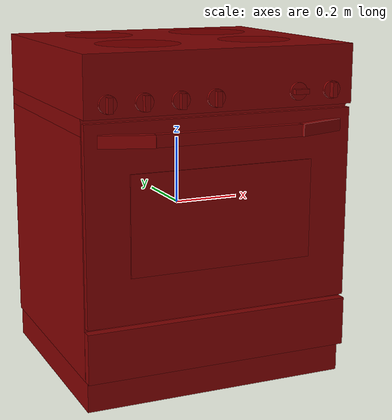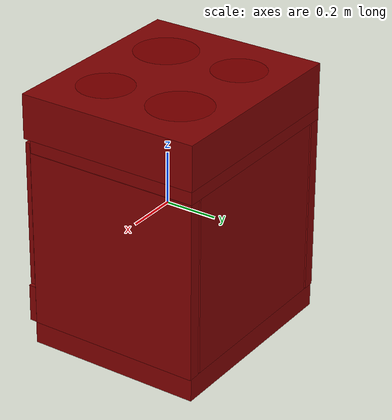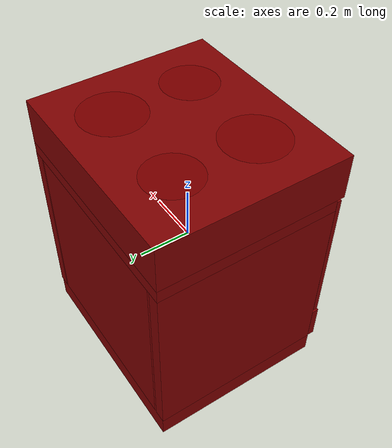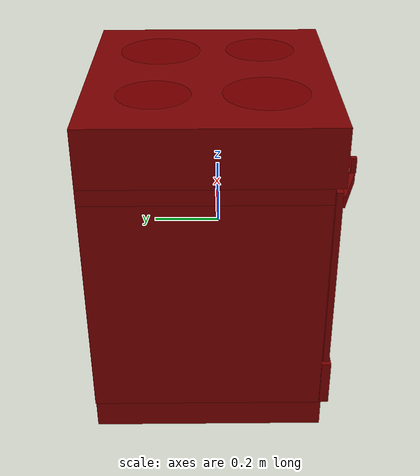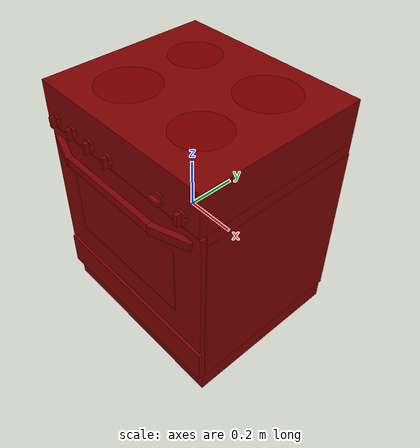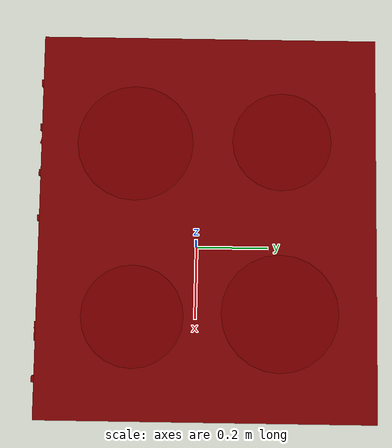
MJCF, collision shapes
<?xml version='1.0' encoding='UTF-8'?>
<mujoco model="model">
  <option timestep="0.002" gravity="0.0 0.0 -9.81"/>
  <compiler angle="radian"/>
  <asset>
    <mesh file="visuals/door.obj" name="door_vis"/>
    <mesh file="visuals/door_Clear.obj" name="door_Clear_vis"/>
    <mesh file="visuals/knob_front_left.obj" name="knob_front_left_vis"/>
    <mesh file="visuals/knob_front_right.obj" name="knob_front_right_vis"/>
    <mesh file="visuals/knob_rear_left.obj" name="knob_rear_left_vis"/>
    <mesh file="visuals/knob_rear_right.obj" name="knob_rear_right_vis"/>
    <mesh file="visuals/knob_temp.obj" name="knob_temp_vis"/>
    <mesh file="visuals/knob_time.obj" name="knob_time_vis"/>
    <mesh file="visuals/rack0.obj" name="rack0_vis"/>
    <mesh file="visuals/Body001.obj" name="Body001_vis"/>
    <texture file="visuals/T_BC001.png" name="Body001_material" type="2d"/>
    <material name="Body001_material" rgba="1 1 1 1.0" texture="Body001_material" shininess="0.1" specular="5"/>
    <texture file="visuals/T_BC001.png" name="door_material" type="2d"/>
    <material name="door_material" rgba="1 1 1 1.0" texture="door_material" shininess="0.1" specular="5"/>
    <material name="door_Clear_material" rgba="0.050874046981334686 0.050874046981334686 0.050874046981334686 0.8" shininess="0.4472135901451111" specular="0.3103448502657381"/>
    <texture file="visuals/T_BC001.png" name="knob_front_left_material" type="2d"/>
    <material name="knob_front_left_material" rgba="1 1 1 1.0" texture="knob_front_left_material" shininess="0.1" specular="5"/>
    <texture file="visuals/T_BC001.png" name="knob_front_right_material" type="2d"/>
    <material name="knob_front_right_material" rgba="1 1 1 1.0" texture="knob_front_right_material" shininess="0.1" specular="5"/>
    <texture file="visuals/T_BC001.png" name="knob_rear_left_material" type="2d"/>
    <material name="knob_rear_left_material" rgba="1 1 1 1.0" texture="knob_rear_left_material" shininess="0.1" specular="5"/>
    <texture file="visuals/T_BC001.png" name="knob_rear_right_material" type="2d"/>
    <material name="knob_rear_right_material" rgba="1 1 1 1.0" texture="knob_rear_right_material" shininess="0.1" specular="5"/>
    <texture file="visuals/T_BC001.png" name="knob_temp_material" type="2d"/>
    <material name="knob_temp_material" rgba="1 1 1 1.0" texture="knob_temp_material" shininess="0.1" specular="5"/>
    <texture file="visuals/T_BC001.png" name="knob_time_material" type="2d"/>
    <material name="knob_time_material" rgba="1 1 1 1.0" texture="knob_time_material" shininess="0.1" specular="5"/>
    <texture file="visuals/T_BC001.png" name="rack0_material" type="2d"/>
    <material name="rack0_material" rgba="1 1 1 1.0" texture="rack0_material" shininess="0.1" specular="5"/>
  </asset>
  <default>
    <default class="visual">
      <geom conaffinity="0" contype="0" group="1" type="mesh"/>
    </default>
    <default class="collision">
      <geom group="0" rgba="0.5 0 0 0.5"/>
    </default>
    <default class="spawn">
      <geom group="0" rgba="1 1 1 0.5" contype="0" conaffinity="0"/>
      <site group="0" rgba="1 1 1 0.5"/>
    </default>
    <default class="region">
      <geom group="1" conaffinity="0" contype="0" rgba="0 1 0 0"/>
    </default>
  </default>
  <worldbody>
    <body>
      <body name="object">
        <geom mesh="Body001_vis" type="mesh" solimp="0.998 0.998 0.001" solref="0.001 1" friction="0.95 0.3 0.1" class="visual" material="Body001_material"/>
        <geom class="collision" type="box" pos="-0.00133716210257262 0.023097313940525055 0.4113282561302185" size="0.403470516204834 0.35299429297447205 0.08573471754789352" quat="1.0 0.0 0.0 0.0"/>
        <geom class="collision" type="box" pos="-0.00133716210257262 0.037276703864336014 0.3016856610774994" size="0.403470516204834 0.3388148844242096 0.02392094023525715" quat="1.0 0.0 0.0 0.0"/>
        <geom class="collision" type="box" pos="-0.3821740746498108 0.037276703864336014 -0.06554436683654785" size="0.022633608430624008 0.3388148844242096 0.34374845027923584" quat="1.0 0.0 0.0 0.0"/>
        <geom class="collision" type="box" pos="0.38086599111557007 0.037276703864336014 -0.06554436683654785" size="0.02351691946387291 0.3388148844242096 0.34374845027923584" quat="1.0 0.0 0.0 0.0"/>
        <geom class="collision" type="box" pos="-0.0003176182508468628 0.3087988793849945 -0.06468535959720612" size="0.34886714816093445 0.06729273498058319 0.3428894281387329" quat="1.0 0.0 0.0 0.0"/>
        <geom class="collision" type="box" pos="-0.0011778704356402159 0.03323206305503845 -0.4528595507144928" size="0.39960867166519165 0.341323584318161 0.046158429235219955" quat="1.0 0.0 0.0 0.0"/>
        <geom class="collision" type="box" pos="-0.0011778704356402159 -0.02567453682422638 -0.2420055866241455" size="0.39960867166519165 0.27528083324432373 0.01859036646783352" quat="1.0 0.0 0.0 0.0"/>
        <geom class="collision" type="box" pos="-0.00046219449723139405 -0.31615152955055237 -0.3353831470012665" size="0.4041641354560852 0.013781357556581497 0.07302897423505783" quat="1.0 0.0 0.0 0.0"/>
        <geom class="collision" type="box" pos="-0.3546552360057831 -0.02630768157541752 0.02832750976085663" size="0.007877656258642673 0.27347517013549805 0.005653773434460163" quat="1.0 0.0 0.0 0.0"/>
        <geom class="collision" type="box" pos="0.35230231285095215 -0.02630768157541752 0.02832750976085663" size="0.007877656258642673 0.27347517013549805 0.005653773434460163" quat="1.0 0.0 0.0 0.0"/>
        <body name="door">
          <joint axis="1.0 0.0 0.0" pos="-0.001029282808303833 -0.3302183151245117 -0.2506394386291504" limited="true" name="door_joint" range="0.0 1.5707963267948966" type="hinge" damping="1" frictionloss="1" armature=".01" stiffness="0.05"/>
          <geom mesh="door_vis" type="mesh" solimp="0.998 0.998 0.001" solref="0.001 1" friction="0.95 0.3 0.1" class="visual" material="door_material"/>
          <geom class="collision" type="box" pos="-0.0006009022472426295 -0.3138124942779541 0.030935212969779968" size="0.4023073613643646 0.009212745353579521 0.28285571932792664" quat="1.0 0.0 0.0 0.0" name="door_main"/>
          <geom class="collision" type="box" pos="4.223734140396118e-05 -0.32718899846076965 0.027562923729419708" size="0.276529997587204 0.002374036470428109 0.1450529247522354" quat="1.0 0.0 0.0 0.0"/>
          <geom class="collision" type="box" pos="-0.0026176385581493378 -0.36757075786590576 0.2667674720287323" size="0.21876071393489838 0.010830729268491268 0.017475847154855728" quat="1.0 0.0 0.0 0.0" name="door_handle_main"/>
          <geom class="collision" type="box" pos="0.28943654894828796 -0.3470131754875183 0.2667674720287323" size="0.07668333500623703 0.011906754225492477 0.017475763335824013" quat="0.9872830510139465 0.0 0.0 0.15897221863269806" name="door_handle_Collider1"/>
          <geom class="collision" type="box" pos="-0.29331424832344055 -0.3470132052898407 0.2667674720287323" size="0.07668333500623703 0.011906754225492477 0.017475763335824013" quat="0.9872830510139465 0.0 -0.0 -0.15897220373153687" name="door_handle_Collider2"/>
          <body name="door_Clear">
            <geom mesh="door_Clear_vis" type="mesh" solimp="0.998 0.998 0.001" solref="0.001 1" friction="0.95 0.3 0.1" class="visual" material="door_Clear_material"/>
            <geom class="collision" type="box" pos="4.223734140396118e-05 -0.32718899846076965 0.027562923729419708" size="0.276529997587204 0.002374036470428109 0.1450529247522354" quat="1.0 0.0 0.0 0.0"/>
          </body>
        </body>
        <body name="knob_front_left">
          <joint axis="0.0 -1.0 0.0" pos="-0.34077516198158264 -0.34444400668144226 0.3651833236217499" limited="true" name="knob_front_left_joint" range="0.0 3.4033920413889422" type="hinge" damping="0.05" armature="1" frictionloss="0.75"/>
          <geom mesh="knob_front_left_vis" type="mesh" solimp="0.998 0.998 0.001" solref="0.001 1" friction="0.95 0.3 0.1" class="visual" material="knob_front_left_material"/>
          <geom class="collision" type="cylinder" pos="-0.3408510088920593 -0.33739298582077026 0.3651825487613678" size="0.025227639824151993 0.0047837491147220135" quat="0.290885865688324 0.29088589549064636 -0.6445040106773376 0.6445040106773376" friction="100 0.5 0.01"/>
          <geom class="collision" type="box" pos="-0.3401111960411072 -0.34976986050605774 0.36422213912010193" size="0.007162494119256735 0.00986693799495697 0.02114325761795044" quat="1.0 0.0 0.0 0.0" name="knob_front_left_main" friction="100 0.5 0.01"/>
        </body>
        <body name="knob_front_right">
          <joint axis="0.0 -1.0 0.0" pos="-0.02919347584247589 -0.34444400668144226 0.3651833236217499" limited="true" name="knob_front_right_joint" range="0.0 3.4033920413889422" type="hinge" damping="0.05" armature="1" frictionloss="0.75"/>
          <geom mesh="knob_front_right_vis" type="mesh" solimp="0.998 0.998 0.001" solref="0.001 1" friction="0.95 0.3 0.1" class="visual" material="knob_front_right_material"/>
          <geom class="collision" type="box" pos="-0.028529509902000427 -0.34976986050605774 0.36422213912010193" size="0.007162494119256735 0.009866936132311821 0.02114325761795044" quat="1.0 0.0 0.0 0.0" name="knob_front_right_main" friction="100 0.5 0.01"/>
          <geom class="collision" type="cylinder" pos="-0.029269322752952576 -0.33739298582077026 0.3651825487613678" size="0.025227639824151993 0.0047837491147220135" quat="0.290885865688324 0.29088589549064636 -0.6445040106773376 0.6445040106773376" friction="100 0.5 0.01"/>
        </body>
        <body name="knob_rear_left">
          <joint axis="0.0 -1.0 0.0" pos="-0.23780187964439392 -0.34444400668144226 0.3651833236217499" limited="true" name="knob_rear_left_joint" range="0.0 3.4033920413889422" type="hinge" damping="0.05" armature="1" frictionloss="0.75"/>
          <geom mesh="knob_rear_left_vis" type="mesh" solimp="0.998 0.998 0.001" solref="0.001 1" friction="0.95 0.3 0.1" class="visual" material="knob_rear_left_material"/>
          <geom class="collision" type="cylinder" pos="-0.2378777265548706 -0.33739298582077026 0.3651825487613678" size="0.025227639824151993 0.0047837491147220135" quat="0.290885865688324 0.29088589549064636 -0.6445040106773376 0.6445040106773376" friction="100 0.5 0.01"/>
          <geom class="collision" type="box" pos="-0.23713791370391846 -0.34976986050605774 0.36422213912010193" size="0.007162494119256735 0.009866934269666672 0.02114325761795044" quat="1.0 0.0 0.0 0.0" name="knob_rear_left_main" friction="100 0.5 0.01"/>
        </body>
        <body name="knob_rear_right">
          <joint axis="0.0 -1.0 0.0" pos="-0.13299134373664856 -0.34444400668144226 0.3651833236217499" limited="true" name="knob_rear_right_joint" range="0.0 3.4033920413889422" type="hinge" damping="0.05" armature="1" frictionloss="0.75"/>
          <geom mesh="knob_rear_right_vis" type="mesh" solimp="0.998 0.998 0.001" solref="0.001 1" friction="0.95 0.3 0.1" class="visual" material="knob_rear_right_material"/>
          <geom class="collision" type="cylinder" pos="-0.13306719064712524 -0.33739298582077026 0.3651825487613678" size="0.025227639824151993 0.0047837491147220135" quat="0.290885865688324 0.29088589549064636 -0.6445040106773376 0.6445040106773376" friction="100 0.5 0.01"/>
          <geom class="collision" type="box" pos="-0.1323273777961731 -0.34976986050605774 0.36422213912010193" size="0.007162494119256735 0.009866932407021523 0.02114325761795044" quat="1.0 0.0 0.0 0.0" name="knob_rear_right_main" friction="100 0.5 0.01"/>
        </body>
        <body name="knob_temp">
          <joint axis="0.0 1.0 0.0" pos="0.33121806383132935 -0.34444400668144226 0.3698011636734009" limited="true" name="knob_temp_joint" range="0.0 5.497787143782138" type="hinge" damping="0.05" armature="1" frictionloss="0.75"/>
          <geom mesh="knob_temp_vis" type="mesh" solimp="0.998 0.998 0.001" solref="0.001 1" friction="0.95 0.3 0.1" class="visual" material="knob_temp_material"/>
          <geom class="collision" type="box" pos="0.3305540978908539 -0.34976986050605774 0.37076234817504883" size="0.007162497378885746 0.009866928681731224 0.02114325761795044" quat="1.0 0.0 0.0 0.0" name="knob_temp_main" friction="100 0.5 0.01"/>
          <geom class="collision" type="cylinder" pos="0.33129391074180603 -0.33739298582077026 0.36980193853378296" size="0.025227639824151993 0.0047837491147220135" quat="0.6445040106773376 0.6445040106773376 0.290885865688324 -0.290885865688324" friction="100 0.5 0.01"/>
        </body>
        <body name="knob_time">
          <joint axis="0.0 1.0 0.0" pos="0.22473637759685516 -0.34444400668144226 0.3703610897064209" limited="true" name="knob_time_joint" range="0.0 5.323254218582705" type="hinge" damping="0.05" frictionloss="0.75" armature="1"/>
          <geom mesh="knob_time_vis" type="mesh" solimp="0.998 0.998 0.001" solref="0.001 1" friction="0.95 0.3 0.1" class="visual" material="knob_time_material"/>
          <geom class="collision" type="box" pos="0.2256975620985031 -0.34976986050605774 0.37102505564689636" size="0.02114325761795044 0.009866930544376373 0.007162495981901884" quat="1.0 0.0 0.0 0.0" name="knob_time_main" friction="100 0.5 0.01"/>
          <geom class="collision" type="cylinder" pos="0.22473715245723724 -0.33739298582077026 0.3702852427959442" size="0.025227639824151993 0.0047837491147220135" quat="0.2500457763671875 0.2500457763671875 0.6614205241203308 -0.6614205241203308" friction="100 0.5 0.01"/>
        </body>
        <body name="rack0">
          <geom class="region" name="reg_rack0" type="box" pos="-0.0012695640325546265 -0.003071695566177368 0.16072539240121841" size="0.3406703153848648 0.21801452136039734 0.11263666099309921"/>
          <joint axis="0.0 -1.0 0.0" pos="-0.000943794846534729 -0.003112494945526123 0.039472855627536774" limited="true" name="rack0_joint" range="0.0 0.4" type="slide" damping="1" frictionloss="1" armature=".01" stiffness="0.05"/>
          <geom mesh="rack0_vis" type="mesh" solimp="0.998 0.998 0.001" solref="0.001 1" friction="0.95 0.3 0.1" class="visual" material="rack0_material"/>
          <geom class="collision" type="box" pos="-0.0011799943167716265 -0.002897242084145546 0.039597295224666595" size="0.3561011552810669 0.22451743483543396 0.003256327472627163" quat="1.0 0.0 0.0 0.0"/>
        </body>
        <geom class="region" name="reg_int" type="box" pos="-0.0012695640325546265 -0.031113028526306152 0.027438171207904816" size="0.3406703153848648 0.2683453390598297 0.2459238821864128"/>
        <site type="cylinder" rgba="0.5 0 0 0.5" size="0.1040044054389 0.0001" pos="-0.18242281675338745 0.17741934955120087 0.49996843934059143" name="burner_on_rear_left"/>
        <site type="cylinder" rgba="0.5 0 0 0.5" size="0.12200000137090683 0.0001" pos="-0.17589505016803741 -0.131295308470726 0.49996843934059143" name="burner_on_front_left"/>
        <site type="cylinder" rgba="0.5 0 0 0.5" size="0.10652495175600052 0.0001" pos="0.18813247978687286 -0.13089273869991302 0.49996843934059143" name="burner_on_front_right"/>
        <site type="cylinder" rgba="0.5 0 0 0.5" size="0.12200000137090683 0.0001" pos="0.17841209471225739 0.17495857179164886 0.49996843934059143" name="burner_on_rear_right"/>
        <site name="burner_rear_left_place_site" type="cylinder" rgba="0.5 0 0 0" size="0.1040044054389 4.999999873689376e-05" pos="-0.18242281675338745 0.17741934955120087 0.49996843934059143"/>
        <site name="burner_front_left_place_site" type="cylinder" rgba="0.5 0 0 0" size="0.12200000137090683 4.999999873689376e-05" pos="-0.17589505016803741 -0.131295308470726 0.49996843934059143"/>
        <site name="burner_front_right_place_site" type="cylinder" rgba="0.5 0 0 0" size="0.10652495175600052 4.999999873689376e-05" pos="0.18813247978687286 -0.13089273869991302 0.49996843934059143"/>
        <site name="burner_rear_right_place_site" type="cylinder" rgba="0.5 0 0 0" size="0.12200000137090683 4.999999873689376e-05" pos="0.17841209471225739 0.17495857179164886 0.49996843934059143"/>
        <geom class="region" name="reg_main" type="box" pos="0.0 0.022844165563583374 0.0" size="0.4060898551940918 0.35574395751953125 0.500918520450592"/>
      </body>
    </body>
  </worldbody>
  <actuator>
    <motor name="door_joint_actuator" joint="door_joint" gear="50"/>
    <motor name="knob_front_left_joint_actuator" joint="knob_front_left_joint" gear="50"/>
    <motor name="knob_front_right_joint_actuator" joint="knob_front_right_joint" gear="50"/>
    <motor name="knob_rear_left_joint_actuator" joint="knob_rear_left_joint" gear="50"/>
    <motor name="knob_rear_right_joint_actuator" joint="knob_rear_right_joint" gear="50"/>
    <motor name="knob_temp_joint_actuator" joint="knob_temp_joint" gear="50"/>
    <motor name="knob_time_joint_actuator" joint="knob_time_joint" gear="50"/>
    <motor name="rack0_joint_actuator" joint="rack0_joint" gear="50"/>
  </actuator>
</mujoco>
